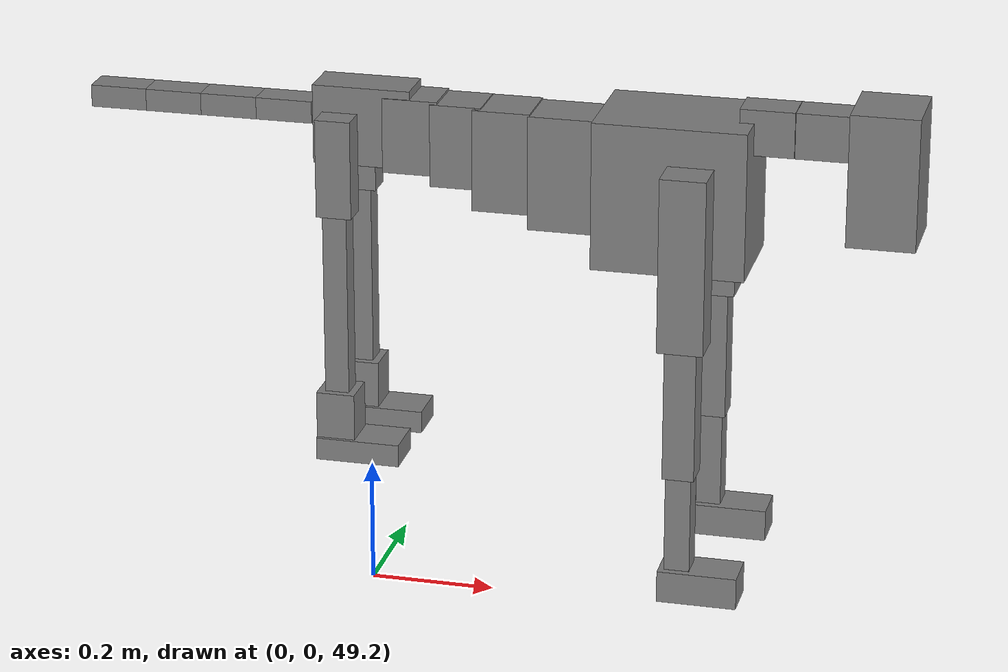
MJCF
<mujoco model="dog">

    <default>
        <joint armature="0.02" stiffness="1" damping="0.2" limited="true"/>
        <geom condim="3" friction="1 0.05 0.05" margin="0.01"/>
        <motor ctrllimited="true" ctrlrange="-1.0 1.0" forcelimited="true" gear="50"/>
    </default>

    <compiler inertiafromgeom="true" angle="radian"/>

    <option timestep="0.016" iterations="50" tolerance="1e-10" solver="Newton" jacobian="dense" cone="pyramidal"/>

    <size nconmax="20000" njmax="60000" nstack="5000000"/>
    <visual>
        <map force="0.1" zfar="30"/>
        <rgba haze="0.15 0.25 0.35 1"/>
        <quality shadowsize="2048"/>
        <global offwidth="800" offheight="800"/>
    </visual>

    <asset>
        <texture type="skybox" builtin="gradient" rgb1="0.3 0.5 0.7" rgb2="0 0 0" width="512" height="512"/>
        <texture name="texplane" type="2d" builtin="checker" rgb1=".2 .3 .4" rgb2=".1 0.15 0.2" width="512" height="512"
                 mark="cross" markrgb=".8 .8 .8"/>
        <texture name="texgeom" type="cube" builtin="flat" mark="cross" width="127" height="1278" rgb1="0.8 0.6 0.4"
                 rgb2="0.8 0.6 0.4" markrgb="1 1 1" random="0.01"/>

        <material name="matplane" reflectance="0.3" texture="texplane" texrepeat="1 1" texuniform="true"/>
        <material name="matgeom" texture="texgeom" texuniform="true" rgba="0.8 0.6 .4 1"/>
    </asset>

    <worldbody>
        <geom name="floor" pos="0 0 0" size="0 0 .25" type="plane" material="matplane" condim="3"/>

        <light directional="false" diffuse=".2 .2 .2" specular="0 0 0" pos="0 0 5" dir="0 0 -1" castshadow="false"/>
        <light mode="targetbodycom" target="torso" directional="false" diffuse=".8 .8 .8" specular="0.3 0.3 0.3"
               pos="0 0 4.0" dir="0 0 -1"/>

        <body name="root" pos="0 0 50">
            <freejoint name="root_1"/>
            <geom type="box" pos="0 0 -0.02" size="0.0774  0.0358  0.063" density="2030"/>

            <body name="spine1" pos="0.054 0 0">
                <joint name="spine1_y" axis="0 1 0" range="0 0.7" limited="true"/>
                <geom type="box" pos="0.02375 0 -0.03" size="0.04375  0.0375  0.05985" density="2030"/>

                <body name="spine2" pos="0.0612 0 0">
                    <joint name="spine2_y" axis="0 1 0" range="-0.15 0.15" limited="true"/>
                    <geom type="box" pos="0.03555  0  -0.04" size="0.04055  0.039  0.06615" density="2030"/>

                    <body name="spine3" pos="0.0730 0 0">
                        <joint name="spine3_y" axis="0 1 0" range="-0.15 0.15" limited="true"/>
                        <geom type="box" pos="0.03555  0  -0.057" size="0.04555  0.0445  0.081" density="2030"/>

                        <body name="spine4" pos="0.0780 0 0">
                            <joint name="spine4_y" axis="0 1 0" range="-0.15 0.15" limited="true"/>
                            <geom type="box" pos="0.05265  0  -0.07" size="0.05265  0.045  0.09135" density="2030"/>

                            <body name="torso" pos="0.1082 0 0">
                                <joint name="torso_y" axis="0 1 0" range="-0.15 0.15" limited="true"/>
                                <geom type="box" pos="0.11925  0  -0.085" size="0.11925  0.085  0.11745"
                                      density="2030"/>

                                <body name="neck1" pos="0.2160  0   0.0180">
                                    <joint name="neck1_y" axis="0 1 0" range="-1.2  -1" limited="true"/>
                                    <geom type="box" pos="0.0423  0  0" size="0.0423  0.03  0.036" density="2325"/>

                                    <body name="neck2" pos="0.0853  0  0">
                                        <joint name="neck2_y" axis="0 1 0" range="0.1  0" limited="true"/>
                                        <geom type="box" pos="0.0423  0  0" size="0.0423  0.03  0.036" density="2325"/>

                                        <body name="head" pos="0.0853  0  0">
                                            <joint name="head_y" axis="0 1 0" range="-0.3  -0.2" limited="true"/>
                                            <geom type="box" pos="0.0531  0  -0.055" size="0.0531  0.06  0.1044"
                                                  density="4030"/>

                                        </body>
                                    </body>
                                </body>

                                <body name="front_shoulder" pos="0.156  0   -0.0480">
                                    <joint name="front_shoulder_y" axis="0 1 0" range="-1 1.5" limited="true"/>
                                    <geom type="box" pos="0 0.13 -0.1121" size="0.0357  0.0305  0.1387" density="1158"/>
                                    <geom type="box" pos="0 -0.13 -0.1121" size="0.0357  0.0305  0.1387"
                                          density="1158"/>

                                    <body name="front_elbow" pos="0  0  -0.2242">
                                        <joint name="front_elbow_y" axis="0 1 0" range="-2 0" limited="true"/>
                                        <geom type="box" pos="0 0.13 -0.1177" size="0.0247  0.0253  0.1177"
                                              density="1081"/>
                                        <geom type="box" pos="0 -0.13 -0.1177" size="0.0247  0.0253  0.1177"
                                              density="1081"/>

                                        <body name="front_wrist" pos="0  0  -0.2355">
                                            <joint name="front_wrist_y" axis="0 1 0" range="-0.2 0" limited="true"/>
                                            <geom type="box" pos="0 0.13 -0.0840" size="0.0199  0.0221  0.0971"
                                                  density="1664"/>
                                            <geom type="box" pos="0 -0.13 -0.0840" size="0.0199  0.0221  0.0971"
                                                  density="1664"/>

                                            <body name="front_finger_end" pos="0  0  -0.1680">
                                                <joint name="front_finger_y" axis="0 1 0" range="-0.4 1"
                                                       limited="true"/>
                                                <geom type="box" pos="0.0340  0.13  -0.0103"
                                                      size="0.0623  0.0340  0.0253" density="1515"/>
                                                <geom type="box" pos="0.0340  -0.13  -0.0103"
                                                      size="0.0623  0.0340  0.0253" density="1515"/>

                                            </body>

                                        </body>
                                    </body>
                                </body>

                            </body>
                        </body>
                    </body>
                </body>
            </body>

            <body name="back_hip" pos="-0.03 0 -0.018">
                <joint name="back_hip_y" axis="0 1 0" range="-1.5 0.3" limited="true"/>
                <geom type="box" pos="0 0.07 -0.0558" size="0.0279  0.0219  0.0786" density="1154"/>
                <geom type="box" pos="0 -0.07 -0.0558" size="0.0279  0.0219  0.0786" density="1154"/>

                <body name="back_knee" pos="0  0  -0.1116">
                    <joint name="back_knee_y" axis="0 1 0" range="0 2.8" limited="true"/>
                    <geom type="box" pos="0 0.07 -0.1622" size="0.0191  0.0188  0.1777" density="1227"/>
                    <geom type="box" pos="0 -0.07 -0.1622" size="0.0191  0.0188  0.1777" density="1227"/>

                    <body name="back_ankle" pos="0  0  -0.3244">
                        <joint name="back_ankle_y" axis="0 1 0" range="-2.2 0" limited="true"/>
                        <geom type="box" pos="0 0.07 -0.0394" size="0.0307  0.0307  0.0506" density="1284"/>
                        <geom type="box" pos="0 -0.07 -0.0394" size="0.0307  0.0307  0.0506" density="1284"/>

                        <body name="back_toe_end" pos="0  0  -0.0788">
                            <joint name="back_toe_y" axis="0 1 0" range="-0.4 1" limited="true"/>
                            <geom type="box" pos="0.0365  0.07  -0.0030" size="0.0670  0.0365  0.0180" density="1515"/>
                            <geom type="box" pos="0.0365  -0.07  -0.0030" size="0.0670  0.0365  0.0180" density="1515"/>

                        </body>
                    </body>
                </body>
            </body>

            <body name="tail1" pos="-0.074 0 -0.006">
                <joint name="tail1_y" axis="0 1 0" range="-0.2 0.2" limited="true"/>
                <geom type="box" pos="-0.0536  0  0" size="0.045  0.025  0.0175" density="1587"/>

                <body name="tail2" pos="-0.09 0 0">
                    <joint name="tail2_y" axis="0 1 0" range="-0.2 0.2" limited="true"/>
                    <geom type="box" pos="-0.0536  0  0" size="0.045  0.025  0.0175" density="1587"/>

                    <body name="tail3" pos="-0.09 0 0">
                        <joint name="tail3_y" axis="0 1 0" range="-0.2 0.2" limited="true"/>
                        <geom type="box" pos="-0.0536  0  0" size="0.045  0.025  0.0175" density="1587"/>

                        <body name="tail4" pos="-0.09 0 0">
                            <joint name="tail4_y" axis="0 1 0" range="-0.2 0.2" limited="true"/>
                            <geom type="box" pos="-0.0536  0  0" size="0.045  0.025  0.0175" density="1587"/>

                        </body>
                    </body>
                </body>
            </body>
        </body>
    </worldbody>

    <actuator>
        <motor joint="spine1_y" forcerange="-150 150     "/>
        <motor joint="spine2_y" forcerange="-150 150     "/>
        <motor joint="spine3_y" forcerange="-150 150     "/>
        <motor joint="spine4_y" forcerange="-150 150     "/>
        <motor joint="torso_y" forcerange="-150 150     "/>
        <motor joint="neck1_y" forcerange="-100 100       "/>
        <motor joint="neck2_y" forcerange="-100 100       "/>
        <motor joint="head_y" forcerange="-150 150       "/>
        <motor joint="front_shoulder_y" forcerange="-190.46 112.83"/>
        <motor joint="front_elbow_y" forcerange="-108.47 175.18"/>
        <motor joint="front_wrist_y" forcerange="-102.81 73.95"/>
        <motor joint="front_finger_y" forcerange="-85.50 55.71"/>
        <motor joint="back_hip_y" forcerange="-287.53 204.11"/>
        <motor joint="back_knee_y" forcerange="-250.02 223.87"/>
        <motor joint="back_angle_y" forcerange="-171.88 218.65"/>
        <motor joint="back_toe_y" forcerange="-135.92 76.42"/>
        <motor joint="tail1_y" forcerange="-50 50     "/>
        <motor joint="tail2_y" forcerange="-50 50     "/>
        <motor joint="tail3_y" forcerange="-50 50     "/>
        <motor joint="tail4_y" forcerange="-50 50     "/>
    </actuator>
</mujoco>
